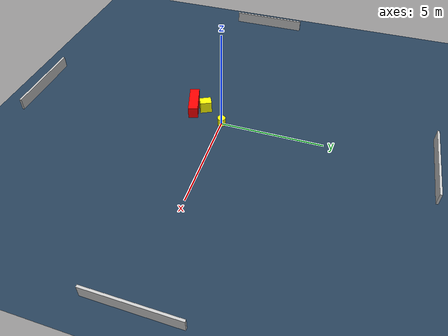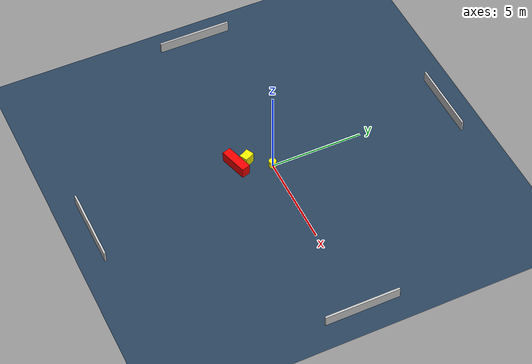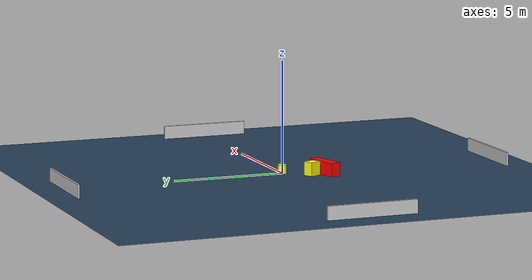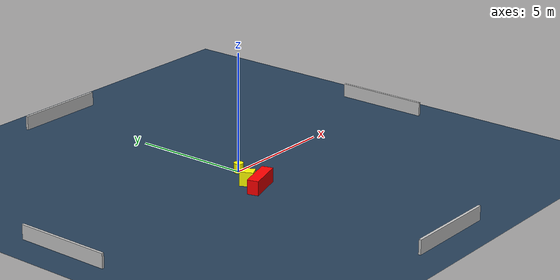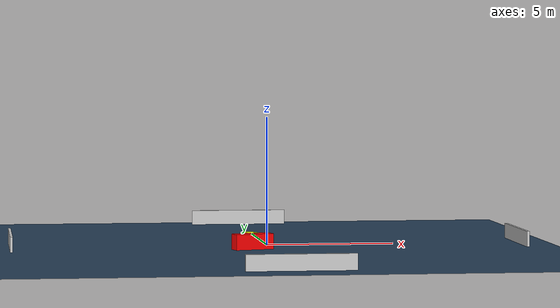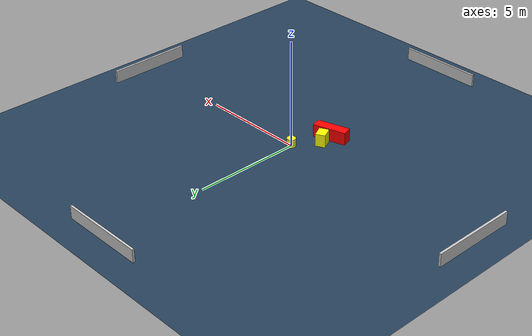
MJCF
<?xml version="1.0" ?>
<mujoco model="generated_environment">
  <option timestep="0.01" integrator="RK4" cone="elliptic"/>
  <default>
    <geom density="1"/>
  </default>
  <asset>
    <texture builtin="gradient" height="3072" name="skybox" rgb1="0.3 0.5 0.7" rgb2="0 0 0" type="skybox" width="512"/>
    <texture builtin="checker" height="300" name="groundplane" rgb1="0.2 0.3 0.4" rgb2="0.1 0.2 0.3" type="2d" width="300"/>
    <material name="groundplane" reflectance="0.2" texrepeat="5 5" texture="groundplane"/>
  </asset>
  <worldbody>
    <light dir="0 0 -1" directional="true" pos="0 0 1.5"/>
    <geom condim="3" friction="0.5 0.005 0.001" material="groundplane" name="floor" pos="0 0 0" size="0 0 0.05" type="plane"/>
    <body name="walls">
      <geom name="wall_1" condim="4" pos="-10.0 0.0 0.3" rgba="0.800000011920929 0.800000011920929 0.800000011920929 1.0" size="0.05 2.0 0.3" type="box"/>
      <geom name="wall_2" condim="4" pos="10.0 0.0 0.3" rgba="0.800000011920929 0.800000011920929 0.800000011920929 1.0" size="0.05 2.0 0.3" type="box"/>
      <geom name="wall_3" condim="4" pos="0.0 -10.0 0.3" rgba="0.800000011920929 0.800000011920929 0.800000011920929 1.0" size="2.0 0.05 0.3" type="box"/>
      <geom name="wall_4" condim="4" pos="0.0 10.0 0.3" rgba="0.800000011920929 0.800000011920929 0.800000011920929 1.0" size="2.0 0.05 0.3" type="box"/>
    </body>
    <body name="robot">
      <joint name="joint_x" type="slide" pos="0 0 0" axis="1 0 0"/>
      <joint name="joint_y" type="slide" pos="0 0 0" axis="0 1 0"/>
      <geom name="robot" type="cylinder" pos="0.0 0.0 0.2" size="0.2 0.2 0.0" mass="5.0" friction="1.0 0.005 0.0001" condim="4" rgba="1.0 1.0 0.0 1.0"/>
    </body>
    <body name="obstacle_1_movable">
      <geom name="obstacle_1_movable" condim="4" pos="-0.7947781884578702 -1.096511544574019 0.3" euler="0 0 296.1630416176581" friction="0.0 0.005 0.001" rgba="1.0 1.0 0.0 1.0" size="0.28680902234244476 0.22547383563095452 0.3" type="box" mass="0.1"/>
      <joint type="free"/>
    </body>
    <body name="obstacle_2_static">
      <geom name="obstacle_2_static" condim="4" pos="-0.755471948859099 -1.7048651385464701 0.3" euler="0 0 196.4712999943955" friction="0.0 0.005 0.001" rgba="1.0 0.0 0.0 1.0" size="0.7758144815876249 0.23681696659478035 0.3" type="box"/>
    </body>
  </worldbody>
  <actuator>
    <motor name="actuator_x" joint="joint_x" gear="1" ctrlrange="-1 1"/>
    <motor name="actuator_y" joint="joint_y" gear="1" ctrlrange="-1 1"/>
  </actuator>
</mujoco>
